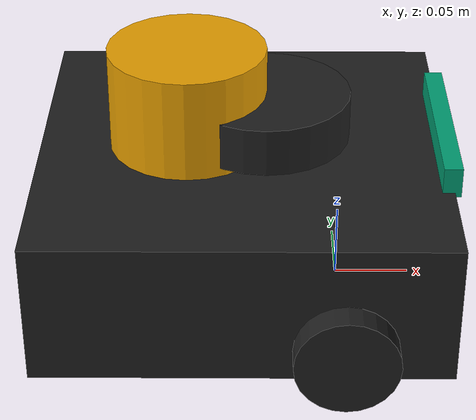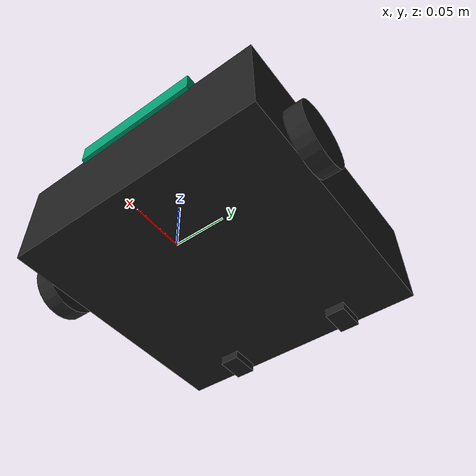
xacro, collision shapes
<?xml version="1.0" ?>
<robot name="turtlebot3_waffle" xmlns:xacro="http://ros.org/wiki/xacro">
  <xacro:include filename="$(find thesis)/urdf/common_properties.xacro"/>
  <xacro:include filename="$(find thesis)/urdf/turtlebot3_waffle.gazebo.xacro"/>

  <xacro:property name="r200_cam_rgb_px" value="0.005"/>
  <xacro:property name="r200_cam_rgb_py" value="0.018"/>
  <xacro:property name="r200_cam_rgb_pz" value="0.013"/>
  <xacro:property name="r200_cam_depth_offset" value="0.01"/>

  <!-- Include the VLP-16 Xacro file -->
 <xacro:include filename="$(find thesis)/urdf/VLP-16.urdf.xacro"/>

  <link name="base_footprint"/>

  <joint name="base_joint" type="fixed">
    <parent link="base_footprint"/>
    <child link="base_link" />
    <origin xyz="0 0 0.010" rpy="0 0 0"/>
  </joint>

  <link name="base_link">
    <visual>
      <origin xyz="-0.064 0 0.0" rpy="0 0 0"/>
      <geometry>
        <mesh filename="package://turtlebot3_description/meshes/bases/waffle_base.stl" scale="0.001 0.001 0.001"/>
      </geometry>
      <material name="light_black"/>
    </visual>

    <collision>
      <origin xyz="-0.064 0 0.047" rpy="0 0 0"/>
      <geometry>
        <box size="0.266 0.266 0.094"/>
      </geometry>
    </collision>

    <inertial>
      <origin xyz="0 0 0" rpy="0 0 0"/>
      <mass value="1.3729096e+00"/>
      <inertia ixx="8.7002718e-03" ixy="-4.7576583e-05" ixz="1.1160499e-04"
               iyy="8.6195418e-03" iyz="-3.5422299e-06"
               izz="1.4612727e-02" />
    </inertial>
  </link>

  <joint name="wheel_left_joint" type="continuous">
    <parent link="base_link"/>
    <child link="wheel_left_link"/>
    <origin xyz="0.0 0.144 0.023" rpy="-1.57 0 0"/>
    <axis xyz="0 0 1"/>
  </joint>

  <link name="wheel_left_link">
    <visual>
      <origin xyz="0 0 0" rpy="1.57 0 0"/>
      <geometry>
        <mesh filename="package://turtlebot3_description/meshes/wheels/left_tire.stl" scale="0.001 0.001 0.001"/>
      </geometry>
      <material name="dark"/>
    </visual>

    <collision>
      <origin xyz="0 0 0" rpy="0 0 0"/>
      <geometry>
        <cylinder length="0.018" radius="0.033"/>
      </geometry>
    </collision>

    <inertial>
      <origin xyz="0 0 0" />
      <mass value="2.8498940e-02" />
      <inertia ixx="1.1175580e-05" ixy="-4.2369783e-11" ixz="-5.9381719e-09"
               iyy="1.1192413e-05" iyz="-1.4400107e-11"
               izz="2.0712558e-05" />
      </inertial>
  </link>

  <joint name="wheel_right_joint" type="continuous">
    <parent link="base_link"/>
    <child link="wheel_right_link"/>
    <origin xyz="0.0 -0.144 0.023" rpy="-1.57 0 0"/>
    <axis xyz="0 0 1"/>
  </joint>

  <link name="wheel_right_link">
    <visual>
      <origin xyz="0 0 0" rpy="1.57 0 0"/>
      <geometry>
        <mesh filename="package://turtlebot3_description/meshes/wheels/right_tire.stl" scale="0.001 0.001 0.001"/>
      </geometry>
      <material name="dark"/>
    </visual>

    <collision>
      <origin xyz="0 0 0" rpy="0 0 0"/>
      <geometry>
        <cylinder length="0.018" radius="0.033"/>
      </geometry>
    </collision>

    <inertial>
      <origin xyz="0 0 0" />
      <mass value="2.8498940e-02" />
      <inertia ixx="1.1175580e-05" ixy="-4.2369783e-11" ixz="-5.9381719e-09"
               iyy="1.1192413e-05" iyz="-1.4400107e-11"
               izz="2.0712558e-05" />
      </inertial>
  </link>

  <joint name="caster_back_right_joint" type="fixed">
    <parent link="base_link"/>
    <child link="caster_back_right_link"/>
    <origin xyz="-0.177 -0.064 -0.004" rpy="-1.57 0 0"/>
  </joint>

  <link name="caster_back_right_link">
    <collision>
      <origin xyz="0 0.001 0" rpy="0 0 0"/>
      <geometry>
        <box size="0.030 0.009 0.020"/>
      </geometry>
    </collision>

    <inertial>
      <origin xyz="0 0 0" />
      <mass value="0.005" />
      <inertia ixx="0.001" ixy="0.0" ixz="0.0"
               iyy="0.001" iyz="0.0"
               izz="0.001" />
    </inertial>
  </link>

  <joint name="caster_back_left_joint" type="fixed">
    <parent link="base_link"/>
    <child link="caster_back_left_link"/>
    <origin xyz="-0.177 0.064 -0.004" rpy="-1.57 0 0"/>
  </joint>

  <link name="caster_back_left_link">
    <collision>
      <origin xyz="0 0.001 0" rpy="0 0 0"/>
      <geometry>
        <box size="0.030 0.009 0.020"/>
      </geometry>
    </collision>

    <inertial>
      <origin xyz="0 0 0" />
      <mass value="0.005" />
      <inertia ixx="0.001" ixy="0.0" ixz="0.0"
               iyy="0.001" iyz="0.0"
               izz="0.001" />
    </inertial>
  </link>

  <joint name="imu_joint" type="fixed">
    <parent link="base_link"/>
    <child link="imu_link"/>
    <origin xyz="0.0 0 0.068" rpy="0 0 0"/>
  </joint>

  <link name="imu_link"/>

  <joint name="scan_joint" type="fixed">
    <parent link="base_link"/>
    <child link="base_scan"/>
    <origin xyz="-0.064 0 0.122" rpy="0 0 0"/>
  </joint>

  <link name="base_scan">
    <visual>
      <origin xyz="0 0 0" rpy="0 0 0"/>
      <geometry>
        <mesh filename="package://turtlebot3_description/meshes/sensors/lds.stl" scale="0.001 0.001 0.001"/>
      </geometry>
      <material name="dark"/>
    </visual>

    <collision>
      <origin xyz="0.015 0 -0.0065" rpy="0 0 0"/>
      <geometry>
        <cylinder length="0.0315" radius="0.055"/>
      </geometry>
    </collision>

    <inertial>
      <mass value="0.114" />
      <origin xyz="0 0 0" />
      <inertia ixx="0.001" ixy="0.0" ixz="0.0"
               iyy="0.001" iyz="0.0"
               izz="0.001" />
    </inertial>
  </link>

  <joint name="camera_joint" type="fixed">
    <origin xyz="0.064 -0.065 0.094" rpy="0 0 0"/>
    <parent link="base_link"/>
    <child link="camera_link"/>
  </joint>

  <link name="camera_link">
    <visual>
     <origin xyz="0 0 0" rpy="1.57 0 1.57"/>
      <geometry>
       <mesh filename="package://turtlebot3_description/meshes/sensors/r200.dae" />
      </geometry>
    </visual>
    <collision>
      <origin xyz="0.003 0.065 0.007" rpy="0 0 0"/>
      <geometry>
        <box size="0.012 0.132 0.020"/>
      </geometry>
    </collision>

    <!-- This inertial field needs doesn't contain reliable data!! -->
  </link>

  <joint name="camera_rgb_joint" type="fixed">
    <origin xyz="${r200_cam_rgb_px} ${r200_cam_rgb_py} ${r200_cam_rgb_pz}" rpy="0 0 0"/>
    <parent link="camera_link"/>
    <child link="camera_rgb_frame"/>
  </joint>
  <link name="camera_rgb_frame"/>

  <joint name="camera_rgb_optical_joint" type="fixed">
    <origin xyz="0 0 0" rpy="-1.57 0 -1.57"/>
    <parent link="camera_rgb_frame"/>
    <child link="camera_rgb_optical_frame"/>
  </joint>
  <link name="camera_rgb_optical_frame"/>

  <joint name="camera_depth_joint" type="fixed">
    <origin xyz="${r200_cam_rgb_px} ${r200_cam_rgb_py + r200_cam_depth_offset} ${r200_cam_rgb_pz}" rpy="0 0 0"/>
    <parent link="camera_link"/>
    <child link="camera_depth_frame"/>
  </joint>
  <link name="camera_depth_frame"/>

  <joint name="camera_depth_optical_joint" type="fixed">
    <origin xyz="0 0 0" rpy="-1.57 0 -1.57"/>
    <parent link="camera_depth_frame"/>
    <child link="camera_depth_optical_frame"/>
  </joint>
  <link name="camera_depth_optical_frame"/>

</robot>

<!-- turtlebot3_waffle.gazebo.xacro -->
<robot name="turtlebot3_waffle_sim" xmlns:xacro="http://ros.org/wiki/xacro">
  <xacro:arg name="laser_visual"  default="false"/>
  <xacro:arg name="camera_visual" default="false"/>
  <xacro:arg name="imu_visual"    default="false"/>
 <xacro:include filename="$(find thesis)/urdf/VLP-16.urdf.xacro"/>

  <gazebo reference="base_link">
    <material>Gazebo/DarkGrey</material>
  </gazebo>

<xacro:VLP-16 parent="base_link" name="velodyne">
  <origin xyz="-0.10 0.0 0.09" rpy="0 0 0"/>
</xacro:VLP-16>

  <gazebo reference="wheel_left_link">
    <mu1>0.1</mu1>
    <mu2>0.1</mu2>
    <kp>500000.0</kp>
    <kd>10.0</kd>
    <minDepth>0.001</minDepth>
    <maxVel>0.1</maxVel>
    <fdir1>1 0 0</fdir1>
    <material>Gazebo/FlatBlack</material>
  </gazebo>

  <gazebo reference="wheel_right_link">
    <mu1>0.1</mu1>
    <mu2>0.1</mu2>
    <kp>500000.0</kp>
    <kd>10.0</kd>
    <minDepth>0.001</minDepth>
    <maxVel>0.1</maxVel>
    <fdir1>1 0 0</fdir1>
    <material>Gazebo/FlatBlack</material>
  </gazebo>

  <gazebo reference="caster_back_right_link">
    <mu1>0.1</mu1>
    <mu2>0.1</mu2>
    <kp>1000000.0</kp>
    <kd>100.0</kd>
    <minDepth>0.001</minDepth>
    <maxVel>1.0</maxVel>
    <material>Gazebo/FlatBlack</material>
  </gazebo>

  <gazebo reference="caster_back_left_link">
    <mu1>0.1</mu1>
    <mu2>0.1</mu2>
    <kp>1000000.0</kp>
    <kd>100.0</kd>
    <minDepth>0.001</minDepth>
    <maxVel>1.0</maxVel>
    <material>Gazebo/FlatBlack</material>
  </gazebo>

  <gazebo reference="imu_link">
    <sensor type="imu" name="imu">
      <always_on>true</always_on>
      <visualize>$(arg imu_visual)</visualize>
    </sensor>
    <material>Gazebo/Grey</material>
  </gazebo>

  <gazebo>
    <plugin name="turtlebot3_waffle_controller" filename="libgazebo_ros_diff_drive.so">
      <commandTopic>cmd_vel</commandTopic>
      <odometryTopic>odom</odometryTopic>
      <odometryFrame>odom</odometryFrame>
      <odometrySource>world</odometrySource>
      <publishOdomTF>true</publishOdomTF>
      <robotBaseFrame>base_footprint</robotBaseFrame>
      <publishWheelTF>false</publishWheelTF>
      <publishTf>true</publishTf>
      <publishWheelJointState>true</publishWheelJointState>
      <legacyMode>false</legacyMode>
      <updateRate>30</updateRate>
      <leftJoint>wheel_left_joint</leftJoint>
      <rightJoint>wheel_right_joint</rightJoint>
      <wheelSeparation>0.287</wheelSeparation>
      <wheelDiameter>0.066</wheelDiameter>
      <wheelAcceleration>1</wheelAcceleration>
      <wheelTorque>10</wheelTorque>
      <rosDebugLevel>na</rosDebugLevel>
    </plugin>
  </gazebo>

  <gazebo>
    <plugin name="imu_plugin" filename="libgazebo_ros_imu.so">
      <alwaysOn>true</alwaysOn>
      <bodyName>imu_link</bodyName>
      <frameName>imu_link</frameName>
      <topicName>imu</topicName>
      <serviceName>imu_service</serviceName>
      <gaussianNoise>0.0</gaussianNoise>
      <updateRate>0</updateRate>
      <imu>
        <noise>
          <type>gaussian</type>
          <rate>
            <mean>0.0</mean>
            <stddev>2e-4</stddev>
            <bias_mean>0.0000075</bias_mean>
            <bias_stddev>0.0000008</bias_stddev>
          </rate>
          <accel>
            <mean>0.0</mean>
            <stddev>1.7e-2</stddev>
            <bias_mean>0.1</bias_mean>
            <bias_stddev>0.001</bias_stddev>
          </accel>
        </noise>
      </imu>
    </plugin>
  </gazebo>

  <gazebo reference="base_scan">
    <material>Gazebo/FlatBlack</material>
    <sensor type="ray" name="lds_lfcd_sensor">
      <pose>0 0 0 0 0 0</pose>
      <visualize>$(arg laser_visual)</visualize>
      <update_rate>5</update_rate>
      <ray>
        <scan>
          <horizontal>
            <samples>180</samples>
            <resolution>1</resolution>
            <min_angle>-1.570796</min_angle>
            <max_angle>1.570796</max_angle>
          </horizontal>
        </scan>
        <range>
          <min>0.120</min>
          <max>3.5</max>
          <resolution>0.015</resolution>
        </range>
        <noise>
          <type>gaussian</type>
          <mean>0.0</mean>
          <stddev>0.01</stddev>
        </noise>
      </ray>
      <plugin name="gazebo_ros_lds_lfcd_controller" filename="libgazebo_ros_laser.so">
        <topicName>scan</topicName>
        <frameName>base_scan</frameName>
      </plugin>
    </sensor>
  </gazebo>

  <gazebo reference="camera_rgb_frame">
    <sensor type="depth" name="realsense_R200">
      <always_on>true</always_on>
      <visualize>$(arg camera_visual)</visualize>
      <camera>
          <horizontal_fov>1.3439</horizontal_fov>
          <image>
              <width>1920</width>
              <height>1080</height>
              <format>R8G8B8</format>
          </image>
          <depth_camera></depth_camera>
          <clip>
              <near>0.03</near>
              <far>100</far>
          </clip>
      </camera>
      <plugin name="camera_controller" filename="libgazebo_ros_openni_kinect.so">
        <baseline>0.2</baseline>
        <alwaysOn>true</alwaysOn>
        <updateRate>30.0</updateRate>
        <cameraName>camera</cameraName>
        <frameName>camera_rgb_optical_frame</frameName>
        <imageTopicName>rgb/image_raw</imageTopicName>
        <depthImageTopicName>depth/image_raw</depthImageTopicName>
        <pointCloudTopicName>depth/points</pointCloudTopicName>
        <cameraInfoTopicName>rgb/camera_info</cameraInfoTopicName>
        <depthImageCameraInfoTopicName>depth/camera_info</depthImageCameraInfoTopicName>
        <pointCloudCutoff>0.4</pointCloudCutoff>
            <hackBaseline>0.07</hackBaseline>
            <distortionK1>0.0</distortionK1>
            <distortionK2>0.0</distortionK2>
            <distortionK3>0.0</distortionK3>
            <distortionT1>0.0</distortionT1>
            <distortionT2>0.0</distortionT2>
        <CxPrime>0.0</CxPrime>
        <Cx>0.0</Cx>
        <Cy>0.0</Cy>
        <focalLength>0</focalLength>
        <hackBaseline>0</hackBaseline>
      </plugin>
    </sensor>
  </gazebo>

</robot>

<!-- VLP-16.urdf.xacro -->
<robot xmlns:xacro="http://www.ros.org/wiki/xacro" name="VLP-16">
  <xacro:property name="M_PI" value="3.1415926535897931" />
  <xacro:macro name="VLP-16" params="*origin parent:=base_link name:=velodyne topic:=/velodyne_points hz:=5 lasers:=16 samples:=1000 collision_range:=0.1 min_range:=0.4 max_range:=2.0 noise:=0.008 min_angle:=-${M_PI} max_angle:=${M_PI} gpu:=false">

    <joint name="${name}_base_mount_joint" type="fixed">
      <xacro:insert_block name="origin" />
      <parent link="${parent}"/>
      <child link="${name}_base_link"/>
    </joint>

    <link name="${name}_base_link">
      <inertial>
        <mass value="0.83"/>
        <origin xyz="0 0 0.03585"/>
        <inertia ixx="${(0.83 * (3.0*0.0516*0.0516 + 0.0717*0.0717)) / 12.0}" ixy="0" ixz="0"
          iyy="${(0.83 * (3.0*0.0516*0.0516 + 0.0717*0.0717)) / 12.0}" iyz="0"
          izz="${0.5 * 0.83 * (0.0516*0.0516)}"/>
      </inertial>
      <visual>
        <geometry>
          <mesh filename="package://velodyne_description/meshes/VLP16_base_1.dae" />
        </geometry>
      </visual>
      <visual>
        <geometry>
          <mesh filename="package://velodyne_description/meshes/VLP16_base_2.dae" />
        </geometry>
      </visual>
      <collision>
        <origin rpy="0 0 0" xyz="0 0 0.03585"/>
        <geometry>
          <cylinder radius="0.0516" length="0.0717"/>
        </geometry>
      </collision>
    </link>

    <joint name="${name}_base_scan_joint" type="fixed" >
      <origin xyz="0 0 0.0377" rpy="0 0 0" />
      <parent link="${name}_base_link" />
      <child link="${name}"/>
    </joint>

    <link name="${name}">
      <inertial>
        <mass value="0.01"/>
        <origin xyz="0 0 0"/>
        <inertia ixx="1e-7" ixy="0" ixz="0" iyy="1e-7" iyz="0" izz="1e-7"/>
      </inertial>
      <visual>
        <origin xyz="0 0 -0.0377" />
        <geometry>
          <mesh filename="package://velodyne_description/meshes/VLP16_scan.dae" />
        </geometry>
      </visual>
    </link>

    <!-- Gazebo requires the velodyne_gazebo_plugins package -->
    <gazebo reference="${name}">
      <xacro:if value="${gpu}">
        <sensor type="gpu_ray" name="${name}-VLP16">
          <pose>0 0 0 0 0 0</pose>
          <visualize>true</visualize>
          <update_rate>${hz}</update_rate>
          <ray>
            <scan>
              <horizontal>
                <samples>${samples}</samples>
                <resolution>0.5</resolution>
                <min_angle>${min_angle}</min_angle>
                <max_angle>${max_angle}</max_angle>
              </horizontal>
              <vertical>
                <samples>32</samples>
                <resolution>1</resolution>
                <min_angle>-${15.0*M_PI/180.0}</min_angle>
                <max_angle> ${15.0*M_PI/180.0}</max_angle>
              </vertical>
            </scan>
            <range>
              <min>${collision_range}</min>
              <max>${max_range+1}</max>
              <resolution>0.001</resolution>
            </range>
            <noise>
              <type>gaussian</type>
              <mean>0.0</mean>
              <stddev>0.0</stddev>
            </noise>
          </ray>
          <plugin name="gazebo_ros_laser_controller" filename="libgazebo_ros_velodyne_gpu_laser.so">
            <topicName>${topic}</topicName>
            <frameName>${name}</frameName>
            <min_range>${min_range}</min_range>
            <max_range>${max_range}</max_range>
            <gaussianNoise>${noise}</gaussianNoise>
          </plugin>
        </sensor>
      </xacro:if>
      <xacro:unless value="${gpu}">
        <sensor type="ray" name="${name}-VLP16">
          <pose>0 0 0 0 0 0</pose>
          <visualize>false</visualize>
          <update_rate>${hz}</update_rate>
          <ray>
            <scan>
              <horizontal>
                <samples>${samples}</samples>
                <resolution>1</resolution>
                <min_angle>${min_angle}</min_angle>
                <max_angle>${max_angle}</max_angle>
              </horizontal>
              <vertical>
                <samples>${lasers}</samples>
                <resolution>1</resolution>
                <min_angle>-${15.0*M_PI/180.0}</min_angle>
                <max_angle> ${15.0*M_PI/180.0}</max_angle>
              </vertical>
            </scan>
            <range>
              <min>${collision_range}</min>
              <max>${max_range+1}</max>
              <resolution>0.001</resolution>
            </range>
            <noise>
              <type>gaussian</type>
              <mean>0.0</mean>
              <stddev>0.0</stddev>
            </noise>
          </ray>
          <plugin name="gazebo_ros_laser_controller" filename="libgazebo_ros_velodyne_laser.so">
            <topicName>${topic}</topicName>
            <frameName>${name}</frameName>
            <min_range>${min_range}</min_range>
            <max_range>${max_range}</max_range>
            <gaussianNoise>${noise}</gaussianNoise>
          </plugin>
        </sensor>
      </xacro:unless>
    </gazebo>

  </xacro:macro>
</robot>
